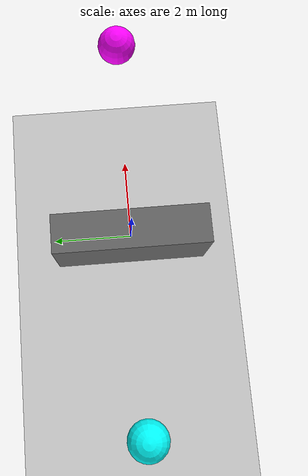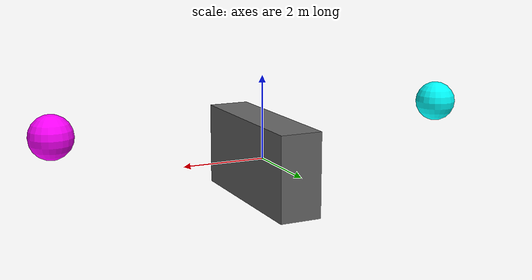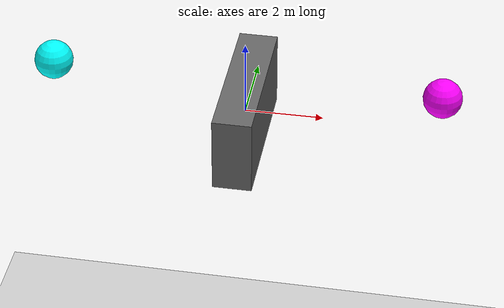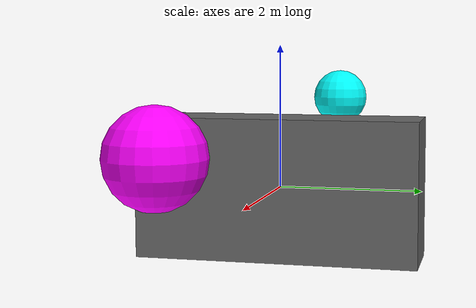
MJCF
<mujoco>
  <option gravity="0 0 -9.81"/>
  <worldbody>
    <!-- Barrier -->
    <body name="barrier" pos="0 0 0">
      <geom type="box" size="0.5 2 1" rgba="0.4 0.4 0.4 1" friction="0.6 0.6 0.6"/>
    </body>
    <!-- Ground Surface -->
    <body name="surface" pos="-10 0 -10">
      <geom type="plane" size="30 30 0.1" rgba="0.8 0.8 0.8 1" friction="1 1 1"/>
    </body>
    <!-- Elastic Sphere -->
    <body name="sphere_elastic" pos="-5 0 1">
      <geom type="sphere" size="0.5" density="1" rgba="0 1 1 1"/>
      <joint name="sphere_elastic_joint" type="free"/>
    </body>
    <!-- Inelastic Sphere -->
    <body name="sphere_inelastic" pos="5 0 1">
      <geom type="sphere" size="0.5" density="1" rgba="1 0 1 1"/>
      <joint name="sphere_inelastic_joint" type="free"/>
    </body>
  </worldbody>
</mujoco>
